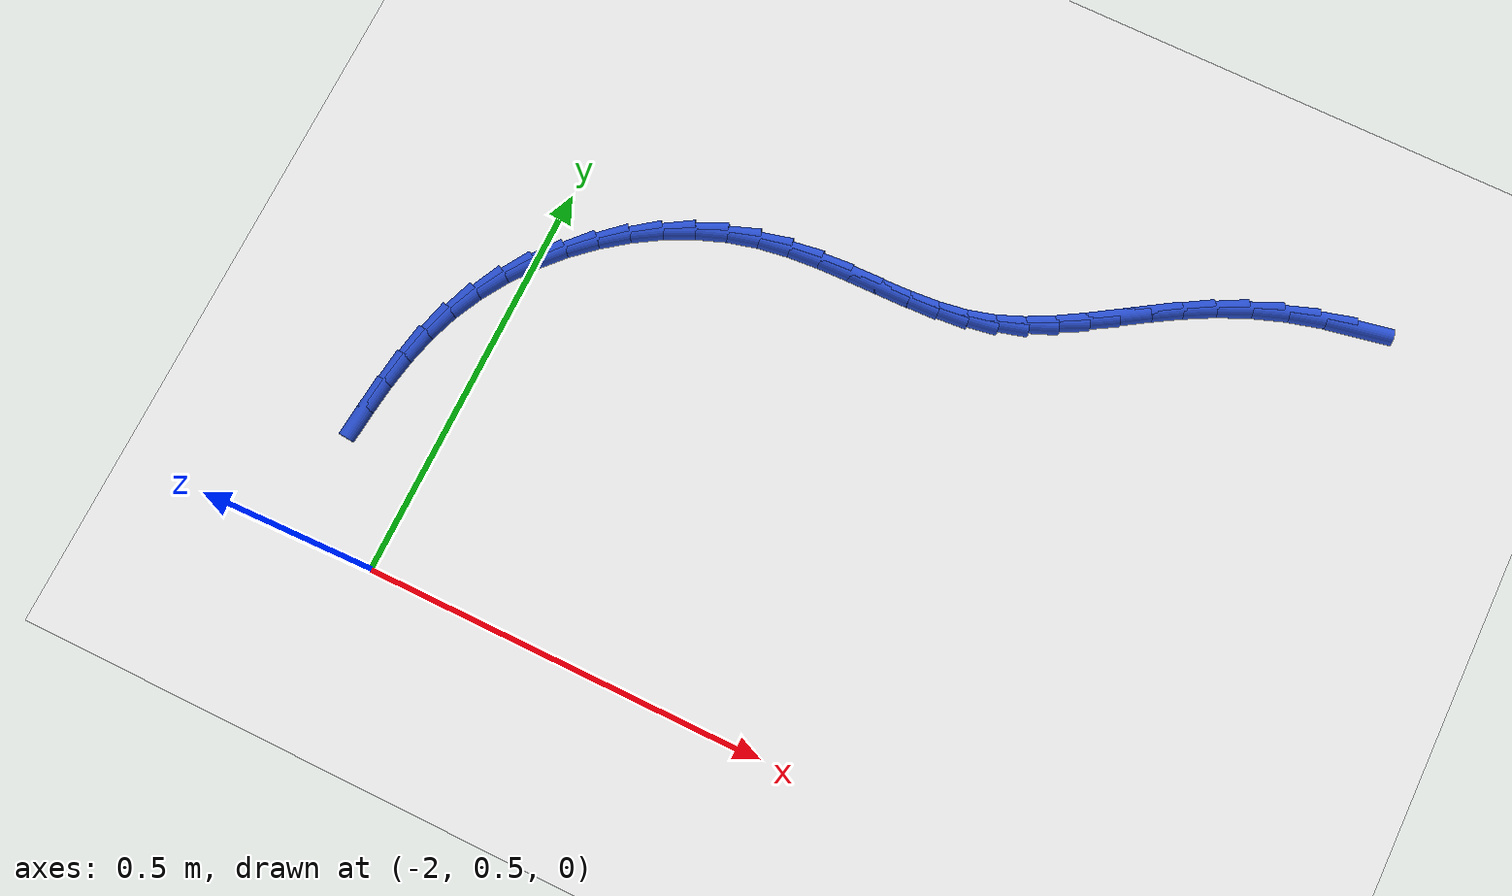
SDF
<sdf version="1.6">
 <world name="default">
  <model name="ground_plane">
   <static>1</static>
   <link name="link">
    <collision name="collision">
     <geometry><plane><normal>0 0 1</normal><size>100 100</size></plane></geometry>
     <surface><friction><ode><mu>100</mu><mu2>50</mu2></ode></friction></surface>
    </collision>
    <visual name="visual">
     <cast_shadows>0</cast_shadows>
     <geometry><plane><normal>0 0 1</normal><size>100 100</size></plane></geometry>
     <material>
      <script><uri>file://media/materials/scripts/gazebo.material</uri><name>Gazebo/WhiteGlow</name></script>
     </material>
    </visual>
   </link>
  </model>
  <model name="line">
   <link name="link_49">
    <pose>-1.0853220197751645 1.2524263676711336 0.01 0 1.57 0.1901178955462986</pose>
    <collision name="collision">
     <geometry><cylinder><radius>0.01</radius><length>0.08</length></cylinder></geometry>
    </collision>
    <visual name="visual">
     <material>
      <script><name>Gazebo/Blue</name><uri>file://media/materials/scripts/gazebo.material</uri></script>
     </material>
     <geometry><cylinder><radius>0.01</radius><length>0.08</length></cylinder></geometry>
    </visual>
   </link>
   <link name="link_50">
    <pose>-1.1286108444358562 1.2440957754998168 0.01 0 1.57 0.26426200059418714</pose>
    <collision name="collision">
     <geometry><cylinder><radius>0.01</radius><length>0.08</length></cylinder></geometry>
    </collision>
    <visual name="visual">
     <material>
      <script><name>Gazebo/Blue</name><uri>file://media/materials/scripts/gazebo.material</uri></script>
     </material>
     <geometry><cylinder><radius>0.01</radius><length>0.08</length></cylinder></geometry>
    </visual>
   </link>
   <link name="link_51">
    <pose>-1.170553397545024 1.2327465249128464 0.01 0 1.57 0.3426386730582417</pose>
    <collision name="collision">
     <geometry><cylinder><radius>0.01</radius><length>0.08</length></cylinder></geometry>
    </collision>
    <visual name="visual">
     <material>
      <script><name>Gazebo/Blue</name><uri>file://media/materials/scripts/gazebo.material</uri></script>
     </material>
     <geometry><cylinder><radius>0.01</radius><length>0.08</length></cylinder></geometry>
    </visual>
   </link>
   <link name="link_52">
    <pose>-1.2104886191293602 1.218501291593741 0.01 0 1.57 0.4252972591554823</pose>
    <collision name="collision">
     <geometry><cylinder><radius>0.01</radius><length>0.08</length></cylinder></geometry>
    </collision>
    <visual name="visual">
     <material>
      <script><name>Gazebo/Blue</name><uri>file://media/materials/scripts/gazebo.material</uri></script>
     </material>
     <geometry><cylinder><radius>0.01</radius><length>0.08</length></cylinder></geometry>
    </visual>
   </link>
   <link name="link_53">
    <pose>-1.2478857526575253 1.201562583528729 0.01 0 1.57 0.49515200709090307</pose>
    <collision name="collision">
     <geometry><cylinder><radius>0.01</radius><length>0.08</length></cylinder></geometry>
    </collision>
    <visual name="visual">
     <material>
      <script><name>Gazebo/Blue</name><uri>file://media/materials/scripts/gazebo.material</uri></script>
     </material>
     <geometry><cylinder><radius>0.01</radius><length>0.08</length></cylinder></geometry>
    </visual>
   </link>
   <link name="link_54">
    <pose>-1.2829875094577012 1.1826067850603768 0.01 0 1.57 0.5431130104490658</pose>
    <collision name="collision">
     <geometry><cylinder><radius>0.01</radius><length>0.08</length></cylinder></geometry>
    </collision>
    <visual name="visual">
     <material>
      <script><name>Gazebo/Blue</name><uri>file://media/materials/scripts/gazebo.material</uri></script>
     </material>
     <geometry><cylinder><radius>0.01</radius><length>0.08</length></cylinder></geometry>
    </visual>
   </link>
   <link name="link_55">
    <pose>-1.3163208886831355 1.1624844536103724 0.01 0 1.57 0.5670746250753681</pose>
    <collision name="collision">
     <geometry><cylinder><radius>0.01</radius><length>0.08</length></cylinder></geometry>
    </collision>
    <visual name="visual">
     <material>
      <script><name>Gazebo/Blue</name><uri>file://media/materials/scripts/gazebo.material</uri></script>
     </material>
     <geometry><cylinder><radius>0.01</radius><length>0.08</length></cylinder></geometry>
    </visual>
   </link>
   <link name="link_56">
    <pose>-1.3484133276915002 1.1420464150727303 0.01 0 1.57 0.5652422160420579</pose>
    <collision name="collision">
     <geometry><cylinder><radius>0.01</radius><length>0.08</length></cylinder></geometry>
    </collision>
    <visual name="visual">
     <material>
      <script><name>Gazebo/Blue</name><uri>file://media/materials/scripts/gazebo.material</uri></script>
     </material>
     <geometry><cylinder><radius>0.01</radius><length>0.08</length></cylinder></geometry>
    </visual>
   </link>
   <link name="link_57">
    <pose>-1.3797922638404658 1.122143495341463 0.01 0 1.57 0.5357213551355328</pose>
    <collision name="collision">
     <geometry><cylinder><radius>0.01</radius><length>0.08</length></cylinder></geometry>
    </collision>
    <visual name="visual">
     <material>
      <script><name>Gazebo/Blue</name><uri>file://media/materials/scripts/gazebo.material</uri></script>
     </material>
     <geometry><cylinder><radius>0.01</radius><length>0.08</length></cylinder></geometry>
    </visual>
   </link>
   <link name="link_58">
    <pose>-1.410985134487703 1.103626520310585 0.01 0 1.57 0.47657925507169985</pose>
    <collision name="collision">
     <geometry><cylinder><radius>0.01</radius><length>0.08</length></cylinder></geometry>
    </collision>
    <visual name="visual">
     <material>
      <script><name>Gazebo/Blue</name><uri>file://media/materials/scripts/gazebo.material</uri></script>
     </material>
     <geometry><cylinder><radius>0.01</radius><length>0.08</length></cylinder></geometry>
    </visual>
   </link>
   <link name="link_59">
    <pose>-1.4425193769908833 1.0873463158741097 0.01 0 1.57 0.3866471353434437</pose>
    <collision name="collision">
     <geometry><cylinder><radius>0.01</radius><length>0.08</length></cylinder></geometry>
    </collision>
    <visual name="visual">
     <material>
      <script><name>Gazebo/Blue</name><uri>file://media/materials/scripts/gazebo.material</uri></script>
     </material>
     <geometry><cylinder><radius>0.01</radius><length>0.08</length></cylinder></geometry>
    </visual>
   </link>
   <link name="link_60">
    <pose>-1.4749224287076776 1.0741537079260501 0.01 0 1.57 0.2682195624435982</pose>
    <collision name="collision">
     <geometry><cylinder><radius>0.01</radius><length>0.08</length></cylinder></geometry>
    </collision>
    <visual name="visual">
     <material>
      <script><name>Gazebo/Blue</name><uri>file://media/materials/scripts/gazebo.material</uri></script>
     </material>
     <geometry><cylinder><radius>0.01</radius><length>0.08</length></cylinder></geometry>
    </visual>
   </link>
   <link name="link_61">
    <pose>-1.50870826747969 1.0648679313849228 0.01 0 1.57 0.15320259135331907</pose>
    <collision name="collision">
     <geometry><cylinder><radius>0.01</radius><length>0.08</length></cylinder></geometry>
    </collision>
    <visual name="visual">
     <material>
      <script><name>Gazebo/Blue</name><uri>file://media/materials/scripts/gazebo.material</uri></script>
     </material>
     <geometry><cylinder><radius>0.01</radius><length>0.08</length></cylinder></geometry>
    </visual>
   </link>
   <link name="link_62">
    <pose>-1.5440110498036075 1.059416738389248 0.01 0 1.57 0.07331086197074509</pose>
    <collision name="collision">
     <geometry><cylinder><radius>0.01</radius><length>0.08</length></cylinder></geometry>
    </collision>
    <visual name="visual">
     <material>
      <script><name>Gazebo/Blue</name><uri>file://media/materials/scripts/gazebo.material</uri></script>
     </material>
     <geometry><cylinder><radius>0.01</radius><length>0.08</length></cylinder></geometry>
    </visual>
   </link>
   <link name="link_63">
    <pose>-1.5805414226016834 1.0567338571822944 0.01 0 1.57 0.027579559542036832</pose>
    <collision name="collision">
     <geometry><cylinder><radius>0.01</radius><length>0.08</length></cylinder></geometry>
    </collision>
    <visual name="visual">
     <material>
      <script><name>Gazebo/Blue</name><uri>file://media/materials/scripts/gazebo.material</uri></script>
     </material>
     <geometry><cylinder><radius>0.01</radius><length>0.08</length></cylinder></geometry>
    </visual>
   </link>
   <link name="link_64">
    <pose>-1.6179878031529802 1.0557008405717643 0.01 0 1.57 0.01318159094645134</pose>
    <collision name="collision">
     <geometry><cylinder><radius>0.01</radius><length>0.08</length></cylinder></geometry>
    </collision>
    <visual name="visual">
     <material>
      <script><name>Gazebo/Blue</name><uri>file://media/materials/scripts/gazebo.material</uri></script>
     </material>
     <geometry><cylinder><radius>0.01</radius><length>0.08</length></cylinder></geometry>
    </visual>
   </link>
   <link name="link_65">
    <pose>-1.656038608736562 1.0551992413653624 0.01 0 1.57 0.028383753029770267</pose>
    <collision name="collision">
     <geometry><cylinder><radius>0.01</radius><length>0.08</length></cylinder></geometry>
    </collision>
    <visual name="visual">
     <material>
      <script><name>Gazebo/Blue</name><uri>file://media/materials/scripts/gazebo.material</uri></script>
     </material>
     <geometry><cylinder><radius>0.01</radius><length>0.08</length></cylinder></geometry>
    </visual>
   </link>
   <link name="link_66">
    <pose>-1.6943822566314921 1.054110612370792 0.01 0 1.57 0.0727769858001371</pose>
    <collision name="collision">
     <geometry><cylinder><radius>0.01</radius><length>0.08</length></cylinder></geometry>
    </collision>
    <visual name="visual">
     <material>
      <script><name>Gazebo/Blue</name><uri>file://media/materials/scripts/gazebo.material</uri></script>
     </material>
     <geometry><cylinder><radius>0.01</radius><length>0.08</length></cylinder></geometry>
    </visual>
   </link>
   <link name="link_67">
    <pose>-1.732707164116834 1.0513165063957566 0.01 0 1.57 0.14680027066136497</pose>
    <collision name="collision">
     <geometry><cylinder><radius>0.01</radius><length>0.08</length></cylinder></geometry>
    </collision>
    <visual name="visual">
     <material>
      <script><name>Gazebo/Blue</name><uri>file://media/materials/scripts/gazebo.material</uri></script>
     </material>
     <geometry><cylinder><radius>0.01</radius><length>0.08</length></cylinder></geometry>
    </visual>
   </link>
   <link name="link_68">
    <pose>-1.770701748471651 1.0456984762479598 0.01 0 1.57 0.24794263371355246</pose>
    <collision name="collision">
     <geometry><cylinder><radius>0.01</radius><length>0.08</length></cylinder></geometry>
    </collision>
    <visual name="visual">
     <material>
      <script><name>Gazebo/Blue</name><uri>file://media/materials/scripts/gazebo.material</uri></script>
     </material>
     <geometry><cylinder><radius>0.01</radius><length>0.08</length></cylinder></geometry>
    </visual>
   </link>
   <link name="link_69">
    <pose>-1.8080529070530227 1.0362429720634192 0.01 0 1.57 0.3535878536883117</pose>
    <collision name="collision">
     <geometry><cylinder><radius>0.01</radius><length>0.08</length></cylinder></geometry>
    </collision>
    <visual name="visual">
     <material>
      <script><name>Gazebo/Blue</name><uri>file://media/materials/scripts/gazebo.material</uri></script>
     </material>
     <geometry><cylinder><radius>0.01</radius><length>0.08</length></cylinder></geometry>
    </visual>
   </link>
   <link name="link_70">
    <pose>-1.8444348157096195 1.0228144181481964 0.01 0 1.57 0.453547082341556</pose>
    <collision name="collision">
     <geometry><cylinder><radius>0.01</radius><length>0.08</length></cylinder></geometry>
    </collision>
    <visual name="visual">
     <material>
      <script><name>Gazebo/Blue</name><uri>file://media/materials/scripts/gazebo.material</uri></script>
     </material>
     <geometry><cylinder><radius>0.01</radius><length>0.08</length></cylinder></geometry>
    </visual>
   </link>
   <link name="link_71">
    <pose>-1.8795153091085381 1.005714875089851 0.01 0 1.57 0.5491045789991541</pose>
    <collision name="collision">
     <geometry><cylinder><radius>0.01</radius><length>0.08</length></cylinder></geometry>
    </collision>
    <visual name="visual">
     <material>
      <script><name>Gazebo/Blue</name><uri>file://media/materials/scripts/gazebo.material</uri></script>
     </material>
     <geometry><cylinder><radius>0.01</radius><length>0.08</length></cylinder></geometry>
    </visual>
   </link>
   <link name="link_72">
    <pose>-1.9129621754384447 0.9852496111820082 0.01 0 1.57 0.6417697399700792</pose>
    <collision name="collision">
     <geometry><cylinder><radius>0.01</radius><length>0.08</length></cylinder></geometry>
    </collision>
    <visual name="visual">
     <material>
      <script><name>Gazebo/Blue</name><uri>file://media/materials/scripts/gazebo.material</uri></script>
     </material>
     <geometry><cylinder><radius>0.01</radius><length>0.08</length></cylinder></geometry>
    </visual>
   </link>
   <link name="link_73">
    <pose>-1.9444432028880057 0.9617238947182949 0.01 0 1.57 0.7331221217846995</pose>
    <collision name="collision">
     <geometry><cylinder><radius>0.01</radius><length>0.08</length></cylinder></geometry>
    </collision>
    <visual name="visual">
     <material>
      <script><name>Gazebo/Blue</name><uri>file://media/materials/scripts/gazebo.material</uri></script>
     </material>
     <geometry><cylinder><radius>0.01</radius><length>0.08</length></cylinder></geometry>
    </visual>
   </link>
   <link name="link_74">
    <pose>-1.973626179645886 0.9354429939923373 0.01 0 1.57 0.8247765543124288</pose>
    <collision name="collision">
     <geometry><cylinder><radius>0.01</radius><length>0.08</length></cylinder></geometry>
    </collision>
    <visual name="visual">
     <material>
      <script><name>Gazebo/Blue</name><uri>file://media/materials/scripts/gazebo.material</uri></script>
     </material>
     <geometry><cylinder><radius>0.01</radius><length>0.08</length></cylinder></geometry>
    </visual>
   </link>
   <link name="link_75">
    <pose>-2.0001788939007525 0.9067121772977621 0.01 0 1.57 0.9183669349296719</pose>
    <collision name="collision">
     <geometry><cylinder><radius>0.01</radius><length>0.08</length></cylinder></geometry>
    </collision>
    <visual name="visual">
     <material>
      <script><name>Gazebo/Blue</name><uri>file://media/materials/scripts/gazebo.material</uri></script>
     </material>
     <geometry><cylinder><radius>0.01</radius><length>0.08</length></cylinder></geometry>
    </visual>
   </link>
   <link name="link_76">
    <pose>-2.0237691338412724 0.8758367129281955 0.01 0 1.57 1.0155279458026991</pose>
    <collision name="collision">
     <geometry><cylinder><radius>0.01</radius><length>0.08</length></cylinder></geometry>
    </collision>
    <visual name="visual">
     <material>
      <script><name>Gazebo/Blue</name><uri>file://media/materials/scripts/gazebo.material</uri></script>
     </material>
     <geometry><cylinder><radius>0.01</radius><length>0.08</length></cylinder></geometry>
    </visual>
   </link>
   <link name="link_77">
    <pose>-2.04406468765611 0.8431218691772638 0.01 0 1.57 1.117852545764345</pose>
    <collision name="collision">
     <geometry><cylinder><radius>0.01</radius><length>0.08</length></cylinder></geometry>
    </collision>
    <visual name="visual">
     <material>
      <script><name>Gazebo/Blue</name><uri>file://media/materials/scripts/gazebo.material</uri></script>
     </material>
     <geometry><cylinder><radius>0.01</radius><length>0.08</length></cylinder></geometry>
    </visual>
   </link>
   <link name="link_78">
    <pose>-2.0607333435339337 0.8088729143385938 0.01 0 1.57 1.2255589277494374</pose>
    <collision name="collision">
     <geometry><cylinder><radius>0.01</radius><length>0.08</length></cylinder></geometry>
    </collision>
    <visual name="visual">
     <material>
      <script><name>Gazebo/Blue</name><uri>file://media/materials/scripts/gazebo.material</uri></script>
     </material>
     <geometry><cylinder><radius>0.01</radius><length>0.08</length></cylinder></geometry>
    </visual>
   </link>
   <link name="link_79">
    <pose>-2.073493472798808 0.77339269203177 0.01 0 1.57 1.3231125607311807</pose>
    <collision name="collision">
     <geometry><cylinder><radius>0.01</radius><length>0.08</length></cylinder></geometry>
    </collision>
    <visual name="visual">
     <material>
      <script><name>Gazebo/Blue</name><uri>file://media/materials/scripts/gazebo.material</uri></script>
     </material>
     <geometry><cylinder><radius>0.01</radius><length>0.08</length></cylinder></geometry>
    </visual>
   </link>
   <link name="link_80">
    <pose>-2.082708165052441 0.736953141669681 0.01 0 1.57 1.398178846744304</pose>
    <collision name="collision">
     <geometry><cylinder><radius>0.01</radius><length>0.08</length></cylinder></geometry>
    </collision>
    <visual name="visual">
     <material>
      <script><name>Gazebo/Blue</name><uri>file://media/materials/scripts/gazebo.material</uri></script>
     </material>
     <geometry><cylinder><radius>0.01</radius><length>0.08</length></cylinder></geometry>
    </visual>
   </link>
   <link name="link_81">
    <pose>-2.0891850604525466 0.6998048933852594 0.01 0 1.57 1.4502472587521806</pose>
    <collision name="collision">
     <geometry><cylinder><radius>0.01</radius><length>0.08</length></cylinder></geometry>
    </collision>
    <visual name="visual">
     <material>
      <script><name>Gazebo/Blue</name><uri>file://media/materials/scripts/gazebo.material</uri></script>
     </material>
     <geometry><cylinder><radius>0.01</radius><length>0.08</length></cylinder></geometry>
    </visual>
   </link>
   <link name="link_82">
    <pose>-2.0937406062899755 0.6621981551464836 0.01 0 1.57 1.4797977328295275</pose>
    <collision name="collision">
     <geometry><cylinder><radius>0.01</radius><length>0.08</length></cylinder></geometry>
    </collision>
    <visual name="visual">
     <material>
      <script><name>Gazebo/Blue</name><uri>file://media/materials/scripts/gazebo.material</uri></script>
     </material>
     <geometry><cylinder><radius>0.01</radius><length>0.08</length></cylinder></geometry>
    </visual>
   </link>
  </model>
 </world>
</sdf>
